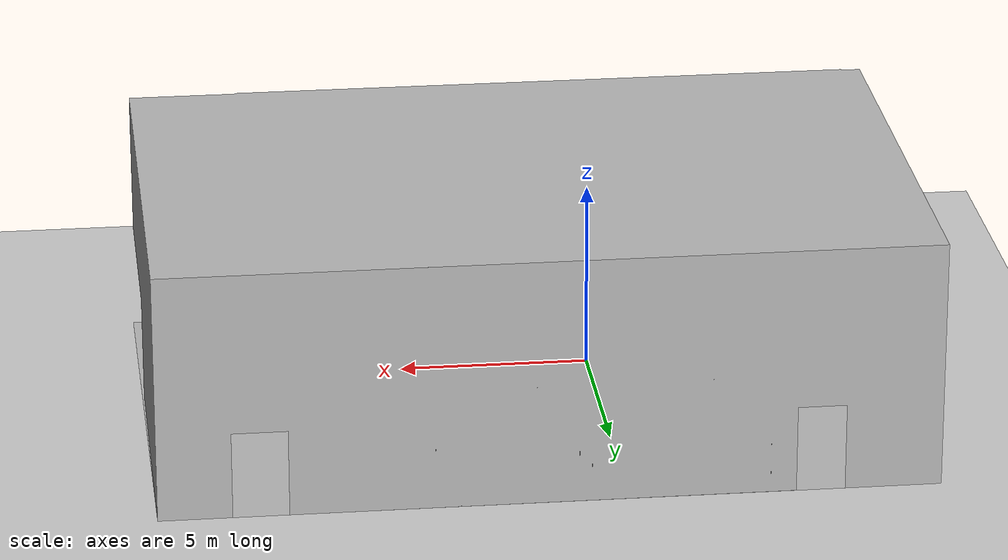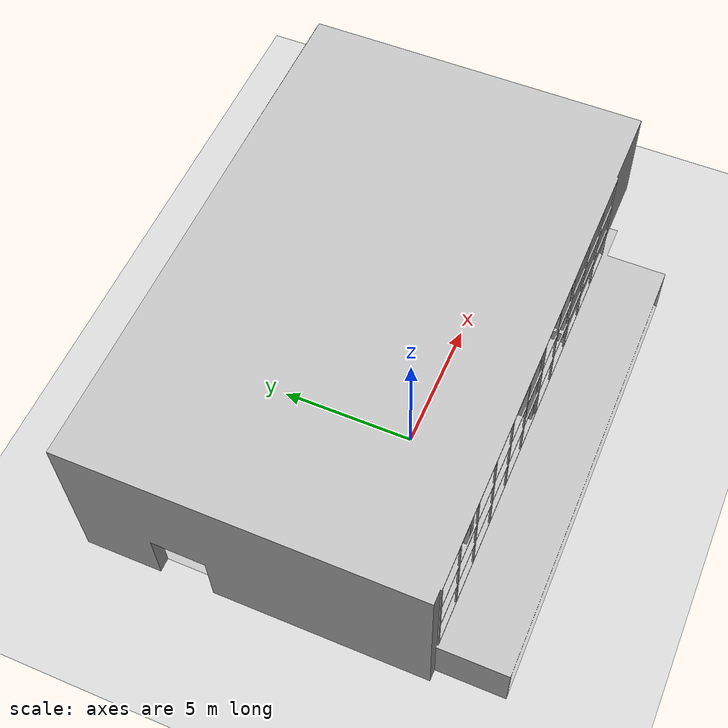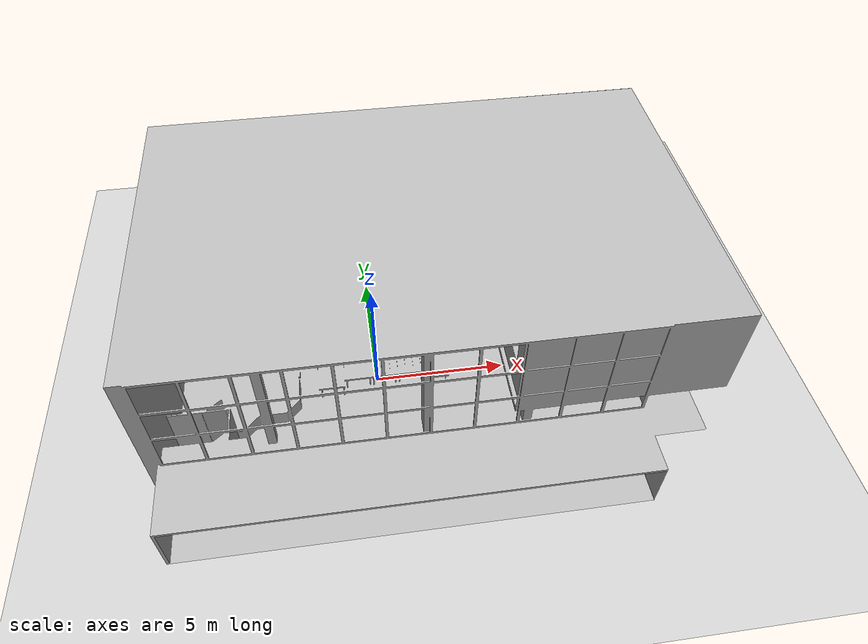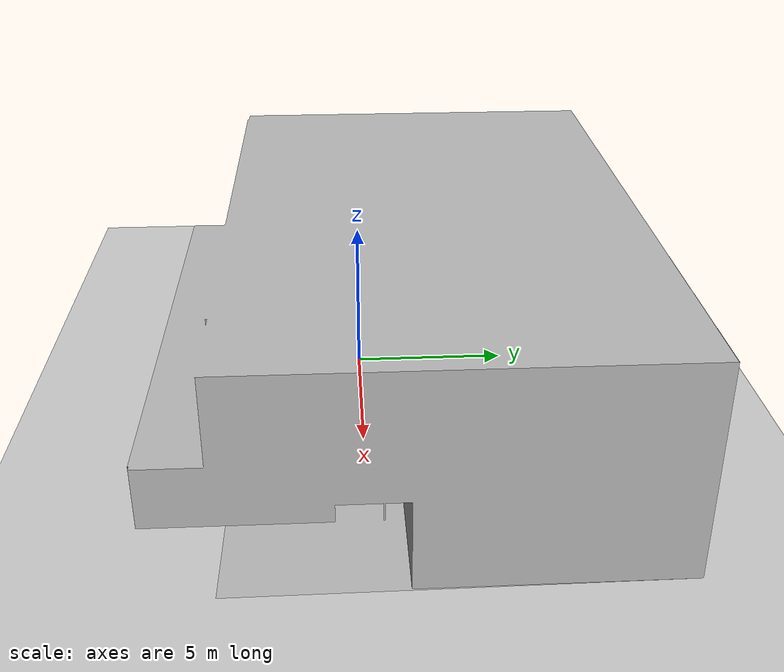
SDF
<?xml version="1.0" ?>
<sdf version="1.5">

  <world name="bauzil_skins_world">
    <physics type="ode">
      <gravity>0 0 -9.81</gravity>
      <ode>
        <solver>
          <type>quick</type>
          <iters>50</iters>
          <sor>1.4</sor>
        </solver>
        <constraints>
          <cfm>0.0</cfm>
          <erp>0.2</erp>
          <contact_max_correcting_vel>100.0</contact_max_correcting_vel>
          <contact_surface_layer>0.0</contact_surface_layer>
        </constraints>
      </ode>
      <real_time_update_rate>1000</real_time_update_rate>
      <max_step_size>0.001</max_step_size>
    </physics>

      <!-- A global light source -->
      <include>
        <uri>model://sun</uri>
      </include>

      <!-- A ground plane -->
      <include>
        <uri>model://ground_plane</uri>
      </include>

      <include>
        <uri>model://bauzil_room</uri>
      </include>

      <!-- add skin -->
      <model name="offices_skin">
        <static>true</static>
        <include>
          <uri>model://airplane_skin</uri>
        </include>
        <pose>6.3 -3.4 0.01 -0.4 0.03 3.14</pose>
      </model>
  </world>
</sdf>

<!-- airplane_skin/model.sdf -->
<sdf version="1.5">
  <model name="airplane_skin">
    <pose>0 0 0  0 0 0</pose>
    <static>true</static>
    <link name="skin">
      <collision name="skin_collision">
        <geometry>
          <mesh>
            <uri>model://airplane_skin/meshes/airplane-skin.dae</uri>
           </mesh>
        </geometry>
      </collision>
      <visual name="skin_visual">
        <geometry>
          <mesh>
            <uri>model://airplane_skin/meshes/airplane-skin.dae</uri>
           </mesh>
        </geometry>
        <material>
          <ambient>0.4 0.57 0.52 1</ambient>
          <diffuse>0.4 0.57 0.52 1</diffuse>
          <specular>0 0 0 0</specular>
          <emissive>0 0 0 1</emissive>
        </material>
      </visual>
    </link>
  </model>
</sdf>

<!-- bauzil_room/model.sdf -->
<sdf version="1.5">
  <model name="bauzil_room">
    <pose>0 0 0  0 0 0</pose>
    <static>true</static>
    <link name="body">
      <collision name="bauzil_collision">
        <geometry>
          <mesh><uri>model://bauzil_room/meshes/bauzil_room.stl</uri></mesh>
        </geometry>
      </collision>
      <visual name="bauzil_visual">
        <geometry>
          <mesh><uri>model://bauzil_room/meshes/bauzil_room.stl</uri></mesh>
        </geometry>
      </visual>
    </link>
  </model>
</sdf>
